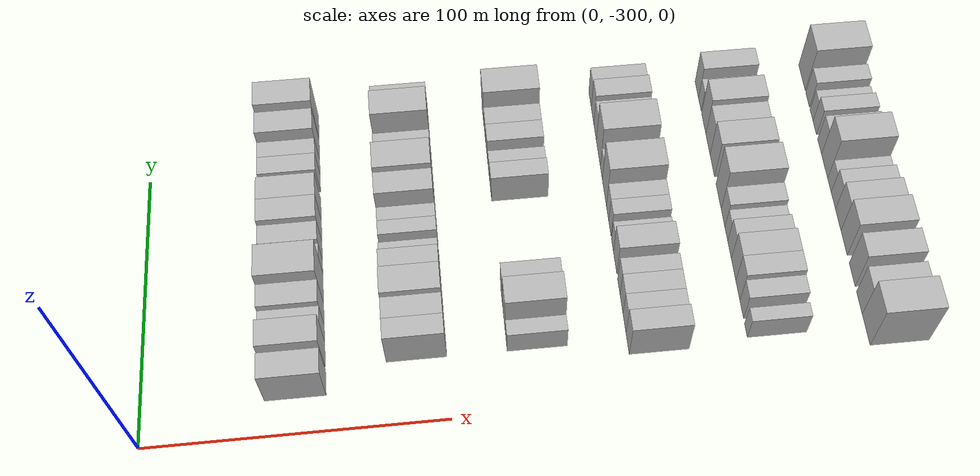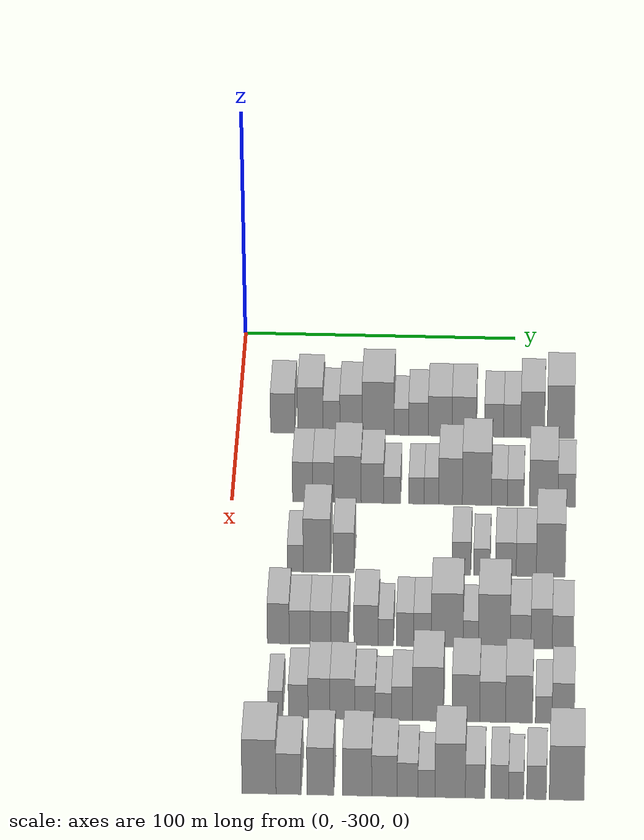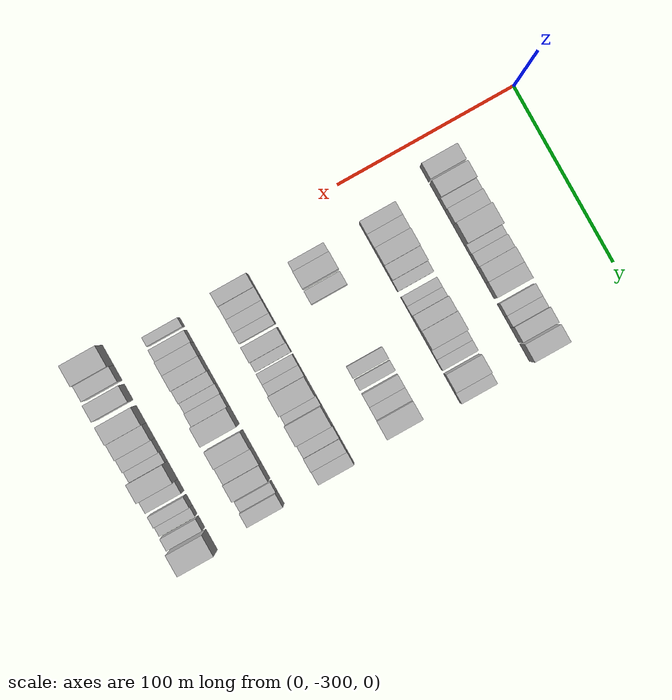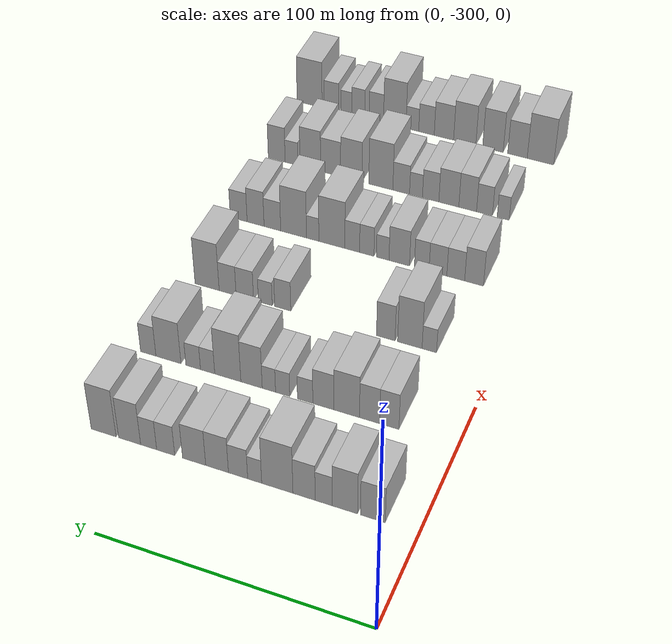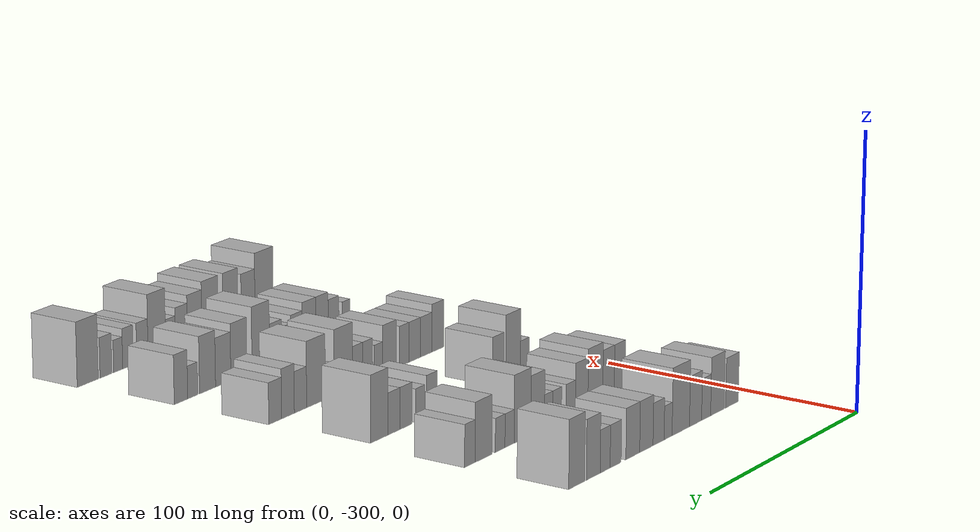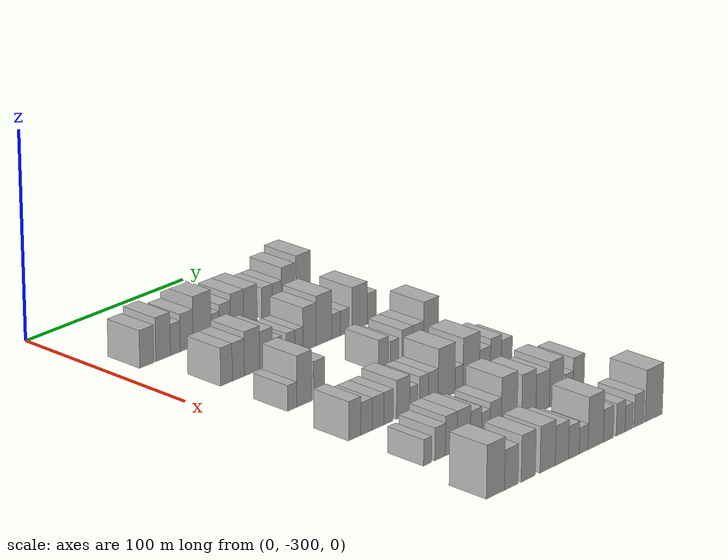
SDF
<sdf version="1.6">
 <world name="default">
  <model name="building_38">
   <static>1</static>
   <pose>50.0000 -283.4087 0 0.000000 0.000000 0.000000</pose>
   <link name="link">
    <pose>0 0 9.00 0 0 0</pose>
    <collision name="collision"><geometry><box><size>20.0000 8.8582 18.0000</size></box></geometry></collision>
    <visual name="visual">
     <cast_shadows>0</cast_shadows>
     <geometry><box><size>20.0000 8.8582 18.0000</size></box></geometry>
     <material>
      <script>
       <uri>model://HANNAS_wall/materials/scripts</uri>
       <uri>model://HANNAS_wall/materials/textures</uri>
       <name>vrc/HANNAS_wall</name>
      </script>
     </material>
    </visual>
   </link>
  </model>
  <model name="building_39">
   <static>1</static>
   <pose>50.0000 -273.3589 0 0.000000 0.000000 0.000000</pose>
   <link name="link">
    <pose>0 0 10.50 0 0 0</pose>
    <collision name="collision"><geometry><box><size>20.0000 9.2415 21.0000</size></box></geometry></collision>
    <visual name="visual">
     <cast_shadows>0</cast_shadows>
     <geometry><box><size>20.0000 9.2415 21.0000</size></box></geometry>
     <material>
      <script>
       <uri>model://HANNAS_wall/materials/scripts</uri>
       <uri>model://HANNAS_wall/materials/textures</uri>
       <name>vrc/HANNAS_wall</name>
      </script>
     </material>
    </visual>
   </link>
  </model>
  <model name="building_40">
   <static>1</static>
   <pose>50.0000 -265.6720 0 0.000000 0.000000 0.000000</pose>
   <link name="link">
    <pose>0 0 7.50 0 0 0</pose>
    <collision name="collision"><geometry><box><size>20.0000 6.1321 15.0000</size></box></geometry></collision>
    <visual name="visual">
     <cast_shadows>0</cast_shadows>
     <geometry><box><size>20.0000 6.1321 15.0000</size></box></geometry>
     <material>
      <script>
       <uri>model://HANNAS_wall/materials/scripts</uri>
       <uri>model://HANNAS_wall/materials/textures</uri>
       <name>vrc/HANNAS_wall</name>
      </script>
     </material>
    </visual>
   </link>
  </model>
  <model name="building_41">
   <static>1</static>
   <pose>50.0000 -258.5333 0 0.000000 0.000000 0.000000</pose>
   <link name="link">
    <pose>0 0 9.00 0 0 0</pose>
    <collision name="collision"><geometry><box><size>20.0000 8.1453 18.0000</size></box></geometry></collision>
    <visual name="visual">
     <cast_shadows>0</cast_shadows>
     <geometry><box><size>20.0000 8.1453 18.0000</size></box></geometry>
     <material>
      <script>
       <uri>model://HANNAS_wall/materials/scripts</uri>
       <uri>model://HANNAS_wall/materials/textures</uri>
       <name>vrc/HANNAS_wall</name>
      </script>
     </material>
    </visual>
   </link>
  </model>
  <model name="building_42">
   <static>1</static>
   <pose>50.0000 -248.6864 0 0.000000 0.000000 0.000000</pose>
   <link name="link">
    <pose>0 0 12.00 0 0 0</pose>
    <collision name="collision"><geometry><box><size>20.0000 11.5486 24.0000</size></box></geometry></collision>
    <visual name="visual">
     <cast_shadows>0</cast_shadows>
     <geometry><box><size>20.0000 11.5486 24.0000</size></box></geometry>
     <material>
      <script>
       <uri>model://HANNAS_wall/materials/scripts</uri>
       <uri>model://HANNAS_wall/materials/textures</uri>
       <name>vrc/HANNAS_wall</name>
      </script>
     </material>
    </visual>
   </link>
  </model>
  <model name="building_43">
   <static>1</static>
   <pose>50.0000 -240.2918 0 0.000000 0.000000 0.000000</pose>
   <link name="link">
    <pose>0 0 6.00 0 0 0</pose>
    <collision name="collision"><geometry><box><size>20.0000 5.2406 12.0000</size></box></geometry></collision>
    <visual name="visual">
     <cast_shadows>0</cast_shadows>
     <geometry><box><size>20.0000 5.2406 12.0000</size></box></geometry>
     <material>
      <script>
       <uri>model://HANNAS_wall/materials/scripts</uri>
       <uri>model://HANNAS_wall/materials/textures</uri>
       <name>vrc/HANNAS_wall</name>
      </script>
     </material>
    </visual>
   </link>
  </model>
  <model name="building_44">
   <static>1</static>
   <pose>50.0000 -234.0662 0 0.000000 0.000000 0.000000</pose>
   <link name="link">
    <pose>0 0 7.50 0 0 0</pose>
    <collision name="collision"><geometry><box><size>20.0000 7.2105 15.0000</size></box></geometry></collision>
    <visual name="visual">
     <cast_shadows>0</cast_shadows>
     <geometry><box><size>20.0000 7.2105 15.0000</size></box></geometry>
     <material>
      <script>
       <uri>model://HANNAS_wall/materials/scripts</uri>
       <uri>model://HANNAS_wall/materials/textures</uri>
       <name>vrc/HANNAS_wall</name>
      </script>
     </material>
    </visual>
   </link>
  </model>
  <model name="building_45">
   <static>1</static>
   <pose>50.0000 -226.1549 0 0.000000 0.000000 0.000000</pose>
   <link name="link">
    <pose>0 0 9.00 0 0 0</pose>
    <collision name="collision"><geometry><box><size>20.0000 8.6121 18.0000</size></box></geometry></collision>
    <visual name="visual">
     <cast_shadows>0</cast_shadows>
     <geometry><box><size>20.0000 8.6121 18.0000</size></box></geometry>
     <material>
      <script>
       <uri>model://HANNAS_wall/materials/scripts</uri>
       <uri>model://HANNAS_wall/materials/textures</uri>
       <name>vrc/HANNAS_wall</name>
      </script>
     </material>
    </visual>
   </link>
  </model>
  <model name="building_46">
   <static>1</static>
   <pose>50.0000 -217.4307 0 0.000000 0.000000 0.000000</pose>
   <link name="link">
    <pose>0 0 9.00 0 0 0</pose>
    <collision name="collision"><geometry><box><size>20.0000 8.8363 18.0000</size></box></geometry></collision>
    <visual name="visual">
     <cast_shadows>0</cast_shadows>
     <geometry><box><size>20.0000 8.8363 18.0000</size></box></geometry>
     <material>
      <script>
       <uri>model://HANNAS_wall/materials/scripts</uri>
       <uri>model://HANNAS_wall/materials/textures</uri>
       <name>vrc/HANNAS_wall</name>
      </script>
     </material>
    </visual>
   </link>
  </model>
  <model name="building_47">
   <static>1</static>
   <pose>50.0000 -206.5322 0 0.000000 0.000000 0.000000</pose>
   <link name="link">
    <pose>0 0 7.50 0 0 0</pose>
    <collision name="collision"><geometry><box><size>20.0000 6.9607 15.0000</size></box></geometry></collision>
    <visual name="visual">
     <cast_shadows>0</cast_shadows>
     <geometry><box><size>20.0000 6.9607 15.0000</size></box></geometry>
     <material>
      <script>
       <uri>model://HANNAS_wall/materials/scripts</uri>
       <uri>model://HANNAS_wall/materials/textures</uri>
       <name>vrc/HANNAS_wall</name>
      </script>
     </material>
    </visual>
   </link>
  </model>
  <model name="building_48">
   <static>1</static>
   <pose>50.0000 -199.9410 0 0.000000 0.000000 0.000000</pose>
   <link name="link">
    <pose>0 0 7.50 0 0 0</pose>
    <collision name="collision"><geometry><box><size>20.0000 6.2218 15.0000</size></box></geometry></collision>
    <visual name="visual">
     <cast_shadows>0</cast_shadows>
     <geometry><box><size>20.0000 6.2218 15.0000</size></box></geometry>
     <material>
      <script>
       <uri>model://HANNAS_wall/materials/scripts</uri>
       <uri>model://HANNAS_wall/materials/textures</uri>
       <name>vrc/HANNAS_wall</name>
      </script>
     </material>
    </visual>
   </link>
  </model>
  <model name="building_49">
   <static>1</static>
   <pose>50.0000 -192.5320 0 0.000000 0.000000 0.000000</pose>
   <link name="link">
    <pose>0 0 10.50 0 0 0</pose>
    <collision name="collision"><geometry><box><size>20.0000 8.5962 21.0000</size></box></geometry></collision>
    <visual name="visual">
     <cast_shadows>0</cast_shadows>
     <geometry><box><size>20.0000 8.5962 21.0000</size></box></geometry>
     <material>
      <script>
       <uri>model://HANNAS_wall/materials/scripts</uri>
       <uri>model://HANNAS_wall/materials/textures</uri>
       <name>vrc/HANNAS_wall</name>
      </script>
     </material>
    </visual>
   </link>
  </model>
  <model name="building_50">
   <static>1</static>
   <pose>50.0000 -182.3297 0 0.000000 0.000000 0.000000</pose>
   <link name="link">
    <pose>0 0 12.00 0 0 0</pose>
    <collision name="collision"><geometry><box><size>20.0000 9.8085 24.0000</size></box></geometry></collision>
    <visual name="visual">
     <cast_shadows>0</cast_shadows>
     <geometry><box><size>20.0000 9.8085 24.0000</size></box></geometry>
     <material>
      <script>
       <uri>model://HANNAS_wall/materials/scripts</uri>
       <uri>model://HANNAS_wall/materials/textures</uri>
       <name>vrc/HANNAS_wall</name>
      </script>
     </material>
    </visual>
   </link>
  </model>
  <model name="building_172">
   <static>1</static>
   <pose>90.0000 -274.3900 0 0.000000 0.000000 0.000000</pose>
   <link name="link">
    <pose>0 0 9.00 0 0 0</pose>
    <collision name="collision"><geometry><box><size>20.0000 7.2951 18.0000</size></box></geometry></collision>
    <visual name="visual">
     <cast_shadows>0</cast_shadows>
     <geometry><box><size>20.0000 7.2951 18.0000</size></box></geometry>
     <material>
      <script>
       <uri>model://HANNAS_wall/materials/scripts</uri>
       <uri>model://HANNAS_wall/materials/textures</uri>
       <name>vrc/HANNAS_wall</name>
      </script>
     </material>
    </visual>
   </link>
  </model>
  <model name="building_173">
   <static>1</static>
   <pose>90.0000 -266.9403 0 0.000000 0.000000 0.000000</pose>
   <link name="link">
    <pose>0 0 9.00 0 0 0</pose>
    <collision name="collision"><geometry><box><size>20.0000 7.6043 18.0000</size></box></geometry></collision>
    <visual name="visual">
     <cast_shadows>0</cast_shadows>
     <geometry><box><size>20.0000 7.6043 18.0000</size></box></geometry>
     <material>
      <script>
       <uri>model://HANNAS_wall/materials/scripts</uri>
       <uri>model://HANNAS_wall/materials/textures</uri>
       <name>vrc/HANNAS_wall</name>
      </script>
     </material>
    </visual>
   </link>
  </model>
  <model name="building_174">
   <static>1</static>
   <pose>90.0000 -258.2692 0 0.000000 0.000000 0.000000</pose>
   <link name="link">
    <pose>0 0 10.50 0 0 0</pose>
    <collision name="collision"><geometry><box><size>20.0000 9.7379 21.0000</size></box></geometry></collision>
    <visual name="visual">
     <cast_shadows>0</cast_shadows>
     <geometry><box><size>20.0000 9.7379 21.0000</size></box></geometry>
     <material>
      <script>
       <uri>model://HANNAS_wall/materials/scripts</uri>
       <uri>model://HANNAS_wall/materials/textures</uri>
       <name>vrc/HANNAS_wall</name>
      </script>
     </material>
    </visual>
   </link>
  </model>
  <model name="building_175">
   <static>1</static>
   <pose>90.0000 -249.3338 0 0.000000 0.000000 0.000000</pose>
   <link name="link">
    <pose>0 0 9.00 0 0 0</pose>
    <collision name="collision"><geometry><box><size>20.0000 8.1328 18.0000</size></box></geometry></collision>
    <visual name="visual">
     <cast_shadows>0</cast_shadows>
     <geometry><box><size>20.0000 8.1328 18.0000</size></box></geometry>
     <material>
      <script>
       <uri>model://HANNAS_wall/materials/scripts</uri>
       <uri>model://HANNAS_wall/materials/textures</uri>
       <name>vrc/HANNAS_wall</name>
      </script>
     </material>
    </visual>
   </link>
  </model>
  <model name="building_176">
   <static>1</static>
   <pose>90.0000 -242.2865 0 0.000000 0.000000 0.000000</pose>
   <link name="link">
    <pose>0 0 6.00 0 0 0</pose>
    <collision name="collision"><geometry><box><size>20.0000 5.9619 12.0000</size></box></geometry></collision>
    <visual name="visual">
     <cast_shadows>0</cast_shadows>
     <geometry><box><size>20.0000 5.9619 12.0000</size></box></geometry>
     <material>
      <script>
       <uri>model://HANNAS_wall/materials/scripts</uri>
       <uri>model://HANNAS_wall/materials/textures</uri>
       <name>vrc/HANNAS_wall</name>
      </script>
     </material>
    </visual>
   </link>
  </model>
  <model name="building_177">
   <static>1</static>
   <pose>90.0000 -233.5311 0 0.000000 0.000000 0.000000</pose>
   <link name="link">
    <pose>0 0 6.00 0 0 0</pose>
    <collision name="collision"><geometry><box><size>20.0000 5.5489 12.0000</size></box></geometry></collision>
    <visual name="visual">
     <cast_shadows>0</cast_shadows>
     <geometry><box><size>20.0000 5.5489 12.0000</size></box></geometry>
     <material>
      <script>
       <uri>model://HANNAS_wall/materials/scripts</uri>
       <uri>model://HANNAS_wall/materials/textures</uri>
       <name>vrc/HANNAS_wall</name>
      </script>
     </material>
    </visual>
   </link>
  </model>
  <model name="building_178">
   <static>1</static>
   <pose>90.0000 -228.1463 0 0.000000 0.000000 0.000000</pose>
   <link name="link">
    <pose>0 0 6.00 0 0 0</pose>
    <collision name="collision"><geometry><box><size>20.0000 5.2207 12.0000</size></box></geometry></collision>
    <visual name="visual">
     <cast_shadows>0</cast_shadows>
     <geometry><box><size>20.0000 5.2207 12.0000</size></box></geometry>
     <material>
      <script>
       <uri>model://HANNAS_wall/materials/scripts</uri>
       <uri>model://HANNAS_wall/materials/textures</uri>
       <name>vrc/HANNAS_wall</name>
      </script>
     </material>
    </visual>
   </link>
  </model>
  <model name="building_179">
   <static>1</static>
   <pose>90.0000 -221.3165 0 0.000000 0.000000 0.000000</pose>
   <link name="link">
    <pose>0 0 10.50 0 0 0</pose>
    <collision name="collision"><geometry><box><size>20.0000 8.4388 21.0000</size></box></geometry></collision>
    <visual name="visual">
     <cast_shadows>0</cast_shadows>
     <geometry><box><size>20.0000 8.4388 21.0000</size></box></geometry>
     <material>
      <script>
       <uri>model://HANNAS_wall/materials/scripts</uri>
       <uri>model://HANNAS_wall/materials/textures</uri>
       <name>vrc/HANNAS_wall</name>
      </script>
     </material>
    </visual>
   </link>
  </model>
  <model name="building_180">
   <static>1</static>
   <pose>90.0000 -211.8844 0 0.000000 0.000000 0.000000</pose>
   <link name="link">
    <pose>0 0 12.00 0 0 0</pose>
    <collision name="collision"><geometry><box><size>20.0000 10.4253 24.0000</size></box></geometry></collision>
    <visual name="visual">
     <cast_shadows>0</cast_shadows>
     <geometry><box><size>20.0000 10.4253 24.0000</size></box></geometry>
     <material>
      <script>
       <uri>model://HANNAS_wall/materials/scripts</uri>
       <uri>model://HANNAS_wall/materials/textures</uri>
       <name>vrc/HANNAS_wall</name>
      </script>
     </material>
    </visual>
   </link>
  </model>
  <model name="building_181">
   <static>1</static>
   <pose>90.0000 -203.8124 0 0.000000 0.000000 0.000000</pose>
   <link name="link">
    <pose>0 0 6.00 0 0 0</pose>
    <collision name="collision"><geometry><box><size>20.0000 5.7188 12.0000</size></box></geometry></collision>
    <visual name="visual">
     <cast_shadows>0</cast_shadows>
     <geometry><box><size>20.0000 5.7188 12.0000</size></box></geometry>
     <material>
      <script>
       <uri>model://HANNAS_wall/materials/scripts</uri>
       <uri>model://HANNAS_wall/materials/textures</uri>
       <name>vrc/HANNAS_wall</name>
      </script>
     </material>
    </visual>
   </link>
  </model>
  <model name="building_182">
   <static>1</static>
   <pose>90.0000 -198.0016 0 0.000000 0.000000 0.000000</pose>
   <link name="link">
    <pose>0 0 6.00 0 0 0</pose>
    <collision name="collision"><geometry><box><size>20.0000 5.9027 12.0000</size></box></geometry></collision>
    <visual name="visual">
     <cast_shadows>0</cast_shadows>
     <geometry><box><size>20.0000 5.9027 12.0000</size></box></geometry>
     <material>
      <script>
       <uri>model://HANNAS_wall/materials/scripts</uri>
       <uri>model://HANNAS_wall/materials/textures</uri>
       <name>vrc/HANNAS_wall</name>
      </script>
     </material>
    </visual>
   </link>
  </model>
  <model name="building_183">
   <static>1</static>
   <pose>90.0000 -187.9559 0 0.000000 0.000000 0.000000</pose>
   <link name="link">
    <pose>0 0 10.50 0 0 0</pose>
    <collision name="collision"><geometry><box><size>20.0000 10.1887 21.0000</size></box></geometry></collision>
    <visual name="visual">
     <cast_shadows>0</cast_shadows>
     <geometry><box><size>20.0000 10.1887 21.0000</size></box></geometry>
     <material>
      <script>
       <uri>model://HANNAS_wall/materials/scripts</uri>
       <uri>model://HANNAS_wall/materials/textures</uri>
       <name>vrc/HANNAS_wall</name>
      </script>
     </material>
    </visual>
   </link>
  </model>
  <model name="building_184">
   <static>1</static>
   <pose>90.0000 -179.7207 0 0.000000 0.000000 0.000000</pose>
   <link name="link">
    <pose>0 0 7.50 0 0 0</pose>
    <collision name="collision"><geometry><box><size>20.0000 6.2817 15.0000</size></box></geometry></collision>
    <visual name="visual">
     <cast_shadows>0</cast_shadows>
     <geometry><box><size>20.0000 6.2817 15.0000</size></box></geometry>
     <material>
      <script>
       <uri>model://HANNAS_wall/materials/scripts</uri>
       <uri>model://HANNAS_wall/materials/textures</uri>
       <name>vrc/HANNAS_wall</name>
      </script>
     </material>
    </visual>
   </link>
  </model>
  <model name="building_301">
   <static>1</static>
   <pose>130.0000 -275.2551 0 0.000000 0.000000 0.000000</pose>
   <link name="link">
    <pose>0 0 6.00 0 0 0</pose>
    <collision name="collision"><geometry><box><size>20.0000 5.6584 12.0000</size></box></geometry></collision>
    <visual name="visual">
     <cast_shadows>0</cast_shadows>
     <geometry><box><size>20.0000 5.6584 12.0000</size></box></geometry>
     <material>
      <script>
       <uri>model://HANNAS_wall/materials/scripts</uri>
       <uri>model://HANNAS_wall/materials/textures</uri>
       <name>vrc/HANNAS_wall</name>
      </script>
     </material>
    </visual>
   </link>
  </model>
  <model name="building_302">
   <static>1</static>
   <pose>130.0000 -267.6108 0 0.000000 0.000000 0.000000</pose>
   <link name="link">
    <pose>0 0 12.00 0 0 0</pose>
    <collision name="collision"><geometry><box><size>20.0000 9.6302 24.0000</size></box></geometry></collision>
    <visual name="visual">
     <cast_shadows>0</cast_shadows>
     <geometry><box><size>20.0000 9.6302 24.0000</size></box></geometry>
     <material>
      <script>
       <uri>model://HANNAS_wall/materials/scripts</uri>
       <uri>model://HANNAS_wall/materials/textures</uri>
       <name>vrc/HANNAS_wall</name>
      </script>
     </material>
    </visual>
   </link>
  </model>
  <model name="building_303">
   <static>1</static>
   <pose>130.0000 -258.1049 0 0.000000 0.000000 0.000000</pose>
   <link name="link">
    <pose>0 0 9.00 0 0 0</pose>
    <collision name="collision"><geometry><box><size>20.0000 7.3816 18.0000</size></box></geometry></collision>
    <visual name="visual">
     <cast_shadows>0</cast_shadows>
     <geometry><box><size>20.0000 7.3816 18.0000</size></box></geometry>
     <material>
      <script>
       <uri>model://HANNAS_wall/materials/scripts</uri>
       <uri>model://HANNAS_wall/materials/textures</uri>
       <name>vrc/HANNAS_wall</name>
      </script>
     </material>
    </visual>
   </link>
  </model>
  <model name="building_304">
   <static>1</static>
   <pose>130.0000 -216.4447 0 0.000000 0.000000 0.000000</pose>
   <link name="link">
    <pose>0 0 7.50 0 0 0</pose>
    <collision name="collision"><geometry><box><size>20.0000 6.6463 15.0000</size></box></geometry></collision>
    <visual name="visual">
     <cast_shadows>0</cast_shadows>
     <geometry><box><size>20.0000 6.6463 15.0000</size></box></geometry>
     <material>
      <script>
       <uri>model://HANNAS_wall/materials/scripts</uri>
       <uri>model://HANNAS_wall/materials/textures</uri>
       <name>vrc/HANNAS_wall</name>
      </script>
     </material>
    </visual>
   </link>
  </model>
  <model name="building_305">
   <static>1</static>
   <pose>130.0000 -209.2404 0 0.000000 0.000000 0.000000</pose>
   <link name="link">
    <pose>0 0 6.00 0 0 0</pose>
    <collision name="collision"><geometry><box><size>20.0000 5.7623 12.0000</size></box></geometry></collision>
    <visual name="visual">
     <cast_shadows>0</cast_shadows>
     <geometry><box><size>20.0000 5.7623 12.0000</size></box></geometry>
     <material>
      <script>
       <uri>model://HANNAS_wall/materials/scripts</uri>
       <uri>model://HANNAS_wall/materials/textures</uri>
       <name>vrc/HANNAS_wall</name>
      </script>
     </material>
    </visual>
   </link>
  </model>
  <model name="building_306">
   <static>1</static>
   <pose>130.0000 -200.7106 0 0.000000 0.000000 0.000000</pose>
   <link name="link">
    <pose>0 0 7.50 0 0 0</pose>
    <collision name="collision"><geometry><box><size>20.0000 7.2974 15.0000</size></box></geometry></collision>
    <visual name="visual">
     <cast_shadows>0</cast_shadows>
     <geometry><box><size>20.0000 7.2974 15.0000</size></box></geometry>
     <material>
      <script>
       <uri>model://HANNAS_wall/materials/scripts</uri>
       <uri>model://HANNAS_wall/materials/textures</uri>
       <name>vrc/HANNAS_wall</name>
      </script>
     </material>
    </visual>
   </link>
  </model>
  <model name="building_307">
   <static>1</static>
   <pose>130.0000 -193.4997 0 0.000000 0.000000 0.000000</pose>
   <link name="link">
    <pose>0 0 7.50 0 0 0</pose>
    <collision name="collision"><geometry><box><size>20.0000 7.1245 15.0000</size></box></geometry></collision>
    <visual name="visual">
     <cast_shadows>0</cast_shadows>
     <geometry><box><size>20.0000 7.1245 15.0000</size></box></geometry>
     <material>
      <script>
       <uri>model://HANNAS_wall/materials/scripts</uri>
       <uri>model://HANNAS_wall/materials/textures</uri>
       <name>vrc/HANNAS_wall</name>
      </script>
     </material>
    </visual>
   </link>
  </model>
  <model name="building_308">
   <static>1</static>
   <pose>130.0000 -184.8288 0 0.000000 0.000000 0.000000</pose>
   <link name="link">
    <pose>0 0 12.00 0 0 0</pose>
    <collision name="collision"><geometry><box><size>20.0000 10.2173 24.0000</size></box></geometry></collision>
    <visual name="visual">
     <cast_shadows>0</cast_shadows>
     <geometry><box><size>20.0000 10.2173 24.0000</size></box></geometry>
     <material>
      <script>
       <uri>model://HANNAS_wall/materials/scripts</uri>
       <uri>model://HANNAS_wall/materials/textures</uri>
       <name>vrc/HANNAS_wall</name>
      </script>
     </material>
    </visual>
   </link>
  </model>
  <model name="building_441">
   <static>1</static>
   <pose>170.0000 -279.4368 0 0.000000 0.000000 0.000000</pose>
   <link name="link">
    <pose>0 0 9.00 0 0 0</pose>
    <collision name="collision"><geometry><box><size>20.0000 7.6248 18.0000</size></box></geometry></collision>
    <visual name="visual">
     <cast_shadows>0</cast_shadows>
     <geometry><box><size>20.0000 7.6248 18.0000</size></box></geometry>
     <material>
      <script>
       <uri>model://HANNAS_wall/materials/scripts</uri>
       <uri>model://HANNAS_wall/materials/textures</uri>
       <name>vrc/HANNAS_wall</name>
      </script>
     </material>
    </visual>
   </link>
  </model>
  <model name="building_442">
   <static>1</static>
   <pose>170.0000 -271.9789 0 0.000000 0.000000 0.000000</pose>
   <link name="link">
    <pose>0 0 7.50 0 0 0</pose>
    <collision name="collision"><geometry><box><size>20.0000 7.2910 15.0000</size></box></geometry></collision>
    <visual name="visual">
     <cast_shadows>0</cast_shadows>
     <geometry><box><size>20.0000 7.2910 15.0000</size></box></geometry>
     <material>
      <script>
       <uri>model://HANNAS_wall/materials/scripts</uri>
       <uri>model://HANNAS_wall/materials/textures</uri>
       <name>vrc/HANNAS_wall</name>
      </script>
     </material>
    </visual>
   </link>
  </model>
  <model name="building_443">
   <static>1</static>
   <pose>170.0000 -264.6996 0 0.000000 0.000000 0.000000</pose>
   <link name="link">
    <pose>0 0 7.50 0 0 0</pose>
    <collision name="collision"><geometry><box><size>20.0000 7.2676 15.0000</size></box></geometry></collision>
    <visual name="visual">
     <cast_shadows>0</cast_shadows>
     <geometry><box><size>20.0000 7.2676 15.0000</size></box></geometry>
     <material>
      <script>
       <uri>model://HANNAS_wall/materials/scripts</uri>
       <uri>model://HANNAS_wall/materials/textures</uri>
       <name>vrc/HANNAS_wall</name>
      </script>
     </material>
    </visual>
   </link>
  </model>
  <model name="building_444">
   <static>1</static>
   <pose>170.0000 -258.0410 0 0.000000 0.000000 0.000000</pose>
   <link name="link">
    <pose>0 0 7.50 0 0 0</pose>
    <collision name="collision"><geometry><box><size>20.0000 6.0497 15.0000</size></box></geometry></collision>
    <visual name="visual">
     <cast_shadows>0</cast_shadows>
     <geometry><box><size>20.0000 6.0497 15.0000</size></box></geometry>
     <material>
      <script>
       <uri>model://HANNAS_wall/materials/scripts</uri>
       <uri>model://HANNAS_wall/materials/textures</uri>
       <name>vrc/HANNAS_wall</name>
      </script>
     </material>
    </visual>
   </link>
  </model>
  <model name="building_445">
   <static>1</static>
   <pose>170.0000 -248.7470 0 0.000000 0.000000 0.000000</pose>
   <link name="link">
    <pose>0 0 9.00 0 0 0</pose>
    <collision name="collision"><geometry><box><size>20.0000 8.5382 18.0000</size></box></geometry></collision>
    <visual name="visual">
     <cast_shadows>0</cast_shadows>
     <geometry><box><size>20.0000 8.5382 18.0000</size></box></geometry>
     <material>
      <script>
       <uri>model://HANNAS_wall/materials/scripts</uri>
       <uri>model://HANNAS_wall/materials/textures</uri>
       <name>vrc/HANNAS_wall</name>
      </script>
     </material>
    </visual>
   </link>
  </model>
  <model name="building_446">
   <static>1</static>
   <pose>170.0000 -241.8376 0 0.000000 0.000000 0.000000</pose>
   <link name="link">
    <pose>0 0 6.00 0 0 0</pose>
    <collision name="collision"><geometry><box><size>20.0000 5.2805 12.0000</size></box></geometry></collision>
    <visual name="visual">
     <cast_shadows>0</cast_shadows>
     <geometry><box><size>20.0000 5.2805 12.0000</size></box></geometry>
     <material>
      <script>
       <uri>model://HANNAS_wall/materials/scripts</uri>
       <uri>model://HANNAS_wall/materials/textures</uri>
       <name>vrc/HANNAS_wall</name>
      </script>
     </material>
    </visual>
   </link>
  </model>
  <model name="building_447">
   <static>1</static>
   <pose>170.0000 -235.1745 0 0.000000 0.000000 0.000000</pose>
   <link name="link">
    <pose>0 0 7.50 0 0 0</pose>
    <collision name="collision"><geometry><box><size>20.0000 6.0457 15.0000</size></box></geometry></collision>
    <visual name="visual">
     <cast_shadows>0</cast_shadows>
     <geometry><box><size>20.0000 6.0457 15.0000</size></box></geometry>
     <material>
      <script>
       <uri>model://HANNAS_wall/materials/scripts</uri>
       <uri>model://HANNAS_wall/materials/textures</uri>
       <name>vrc/HANNAS_wall</name>
      </script>
     </material>
    </visual>
   </link>
  </model>
  <model name="building_448">
   <static>1</static>
   <pose>170.0000 -229.0425 0 0.000000 0.000000 0.000000</pose>
   <link name="link">
    <pose>0 0 7.50 0 0 0</pose>
    <collision name="collision"><geometry><box><size>20.0000 6.2183 15.0000</size></box></geometry></collision>
    <visual name="visual">
     <cast_shadows>0</cast_shadows>
     <geometry><box><size>20.0000 6.2183 15.0000</size></box></geometry>
     <material>
      <script>
       <uri>model://HANNAS_wall/materials/scripts</uri>
       <uri>model://HANNAS_wall/materials/textures</uri>
       <name>vrc/HANNAS_wall</name>
      </script>
     </material>
    </visual>
   </link>
  </model>
  <model name="building_449">
   <static>1</static>
   <pose>170.0000 -220.3981 0 0.000000 0.000000 0.000000</pose>
   <link name="link">
    <pose>0 0 12.00 0 0 0</pose>
    <collision name="collision"><geometry><box><size>20.0000 11.0705 24.0000</size></box></geometry></collision>
    <visual name="visual">
     <cast_shadows>0</cast_shadows>
     <geometry><box><size>20.0000 11.0705 24.0000</size></box></geometry>
     <material>
      <script>
       <uri>model://HANNAS_wall/materials/scripts</uri>
       <uri>model://HANNAS_wall/materials/textures</uri>
       <name>vrc/HANNAS_wall</name>
      </script>
     </material>
    </visual>
   </link>
  </model>
  <model name="building_450">
   <static>1</static>
   <pose>170.0000 -212.2107 0 0.000000 0.000000 0.000000</pose>
   <link name="link">
    <pose>0 0 6.00 0 0 0</pose>
    <collision name="collision"><geometry><box><size>20.0000 5.3043 12.0000</size></box></geometry></collision>
    <visual name="visual">
     <cast_shadows>0</cast_shadows>
     <geometry><box><size>20.0000 5.3043 12.0000</size></box></geometry>
     <material>
      <script>
       <uri>model://HANNAS_wall/materials/scripts</uri>
       <uri>model://HANNAS_wall/materials/textures</uri>
       <name>vrc/HANNAS_wall</name>
      </script>
     </material>
    </visual>
   </link>
  </model>
  <model name="building_451">
   <static>1</static>
   <pose>170.0000 -203.9943 0 0.000000 0.000000 0.000000</pose>
   <link name="link">
    <pose>0 0 12.00 0 0 0</pose>
    <collision name="collision"><geometry><box><size>20.0000 11.1286 24.0000</size></box></geometry></collision>
    <visual name="visual">
     <cast_shadows>0</cast_shadows>
     <geometry><box><size>20.0000 11.1286 24.0000</size></box></geometry>
     <material>
      <script>
       <uri>model://HANNAS_wall/materials/scripts</uri>
       <uri>model://HANNAS_wall/materials/textures</uri>
       <name>vrc/HANNAS_wall</name>
      </script>
     </material>
    </visual>
   </link>
  </model>
  <model name="building_452">
   <static>1</static>
   <pose>170.0000 -194.8147 0 0.000000 0.000000 0.000000</pose>
   <link name="link">
    <pose>0 0 7.50 0 0 0</pose>
    <collision name="collision"><geometry><box><size>20.0000 7.2306 15.0000</size></box></geometry></collision>
    <visual name="visual">
     <cast_shadows>0</cast_shadows>
     <geometry><box><size>20.0000 7.2306 15.0000</size></box></geometry>
     <material>
      <script>
       <uri>model://HANNAS_wall/materials/scripts</uri>
       <uri>model://HANNAS_wall/materials/textures</uri>
       <name>vrc/HANNAS_wall</name>
      </script>
     </material>
    </visual>
   </link>
  </model>
  <model name="building_453">
   <static>1</static>
   <pose>170.0000 -187.4894 0 0.000000 0.000000 0.000000</pose>
   <link name="link">
    <pose>0 0 9.00 0 0 0</pose>
    <collision name="collision"><geometry><box><size>20.0000 7.4199 18.0000</size></box></geometry></collision>
    <visual name="visual">
     <cast_shadows>0</cast_shadows>
     <geometry><box><size>20.0000 7.4199 18.0000</size></box></geometry>
     <material>
      <script>
       <uri>model://HANNAS_wall/materials/scripts</uri>
       <uri>model://HANNAS_wall/materials/textures</uri>
       <name>vrc/HANNAS_wall</name>
      </script>
     </material>
    </visual>
   </link>
  </model>
  <model name="building_454">
   <static>1</static>
   <pose>170.0000 -180.0753 0 0.000000 0.000000 0.000000</pose>
   <link name="link">
    <pose>0 0 7.50 0 0 0</pose>
    <collision name="collision"><geometry><box><size>20.0000 7.4084 15.0000</size></box></geometry></collision>
    <visual name="visual">
     <cast_shadows>0</cast_shadows>
     <geometry><box><size>20.0000 7.4084 15.0000</size></box></geometry>
     <material>
      <script>
       <uri>model://HANNAS_wall/materials/scripts</uri>
       <uri>model://HANNAS_wall/materials/textures</uri>
       <name>vrc/HANNAS_wall</name>
      </script>
     </material>
    </visual>
   </link>
  </model>
  <model name="building_584">
   <static>1</static>
   <pose>210.0000 -278.5540 0 0.000000 0.000000 0.000000</pose>
   <link name="link">
    <pose>0 0 6.00 0 0 0</pose>
    <collision name="collision"><geometry><box><size>20.0000 5.0502 12.0000</size></box></geometry></collision>
    <visual name="visual">
     <cast_shadows>0</cast_shadows>
     <geometry><box><size>20.0000 5.0502 12.0000</size></box></geometry>
     <material>
      <script>
       <uri>model://HANNAS_wall/materials/scripts</uri>
       <uri>model://HANNAS_wall/materials/textures</uri>
       <name>vrc/HANNAS_wall</name>
      </script>
     </material>
    </visual>
   </link>
  </model>
  <model name="building_585">
   <static>1</static>
   <pose>210.0000 -270.6662 0 0.000000 0.000000 0.000000</pose>
   <link name="link">
    <pose>0 0 7.50 0 0 0</pose>
    <collision name="collision"><geometry><box><size>20.0000 6.7253 15.0000</size></box></geometry></collision>
    <visual name="visual">
     <cast_shadows>0</cast_shadows>
     <geometry><box><size>20.0000 6.7253 15.0000</size></box></geometry>
     <material>
      <script>
       <uri>model://HANNAS_wall/materials/scripts</uri>
       <uri>model://HANNAS_wall/materials/textures</uri>
       <name>vrc/HANNAS_wall</name>
      </script>
     </material>
    </visual>
   </link>
  </model>
  <model name="building_586">
   <static>1</static>
   <pose>210.0000 -263.5323 0 0.000000 0.000000 0.000000</pose>
   <link name="link">
    <pose>0 0 9.00 0 0 0</pose>
    <collision name="collision"><geometry><box><size>20.0000 7.5426 18.0000</size></box></geometry></collision>
    <visual name="visual">
     <cast_shadows>0</cast_shadows>
     <geometry><box><size>20.0000 7.5426 18.0000</size></box></geometry>
     <material>
      <script>
       <uri>model://HANNAS_wall/materials/scripts</uri>
       <uri>model://HANNAS_wall/materials/textures</uri>
       <name>vrc/HANNAS_wall</name>
      </script>
     </material>
    </visual>
   </link>
  </model>
  <model name="building_587">
   <static>1</static>
   <pose>210.0000 -255.4830 0 0.000000 0.000000 0.000000</pose>
   <link name="link">
    <pose>0 0 9.00 0 0 0</pose>
    <collision name="collision"><geometry><box><size>20.0000 8.5559 18.0000</size></box></geometry></collision>
    <visual name="visual">
     <cast_shadows>0</cast_shadows>
     <geometry><box><size>20.0000 8.5559 18.0000</size></box></geometry>
     <material>
      <script>
       <uri>model://HANNAS_wall/materials/scripts</uri>
       <uri>model://HANNAS_wall/materials/textures</uri>
       <name>vrc/HANNAS_wall</name>
      </script>
     </material>
    </visual>
   </link>
  </model>
  <model name="building_588">
   <static>1</static>
   <pose>210.0000 -247.6713 0 0.000000 0.000000 0.000000</pose>
   <link name="link">
    <pose>0 0 7.50 0 0 0</pose>
    <collision name="collision"><geometry><box><size>20.0000 7.0676 15.0000</size></box></geometry></collision>
    <visual name="visual">
     <cast_shadows>0</cast_shadows>
     <geometry><box><size>20.0000 7.0676 15.0000</size></box></geometry>
     <material>
      <script>
       <uri>model://HANNAS_wall/materials/scripts</uri>
       <uri>model://HANNAS_wall/materials/textures</uri>
       <name>vrc/HANNAS_wall</name>
      </script>
     </material>
    </visual>
   </link>
  </model>
  <model name="building_589">
   <static>1</static>
   <pose>210.0000 -241.3394 0 0.000000 0.000000 0.000000</pose>
   <link name="link">
    <pose>0 0 6.00 0 0 0</pose>
    <collision name="collision"><geometry><box><size>20.0000 5.5961 12.0000</size></box></geometry></collision>
    <visual name="visual">
     <cast_shadows>0</cast_shadows>
     <geometry><box><size>20.0000 5.5961 12.0000</size></box></geometry>
     <material>
      <script>
       <uri>model://HANNAS_wall/materials/scripts</uri>
       <uri>model://HANNAS_wall/materials/textures</uri>
       <name>vrc/HANNAS_wall</name>
      </script>
     </material>
    </visual>
   </link>
  </model>
  <model name="building_590">
   <static>1</static>
   <pose>210.0000 -234.9019 0 0.000000 0.000000 0.000000</pose>
   <link name="link">
    <pose>0 0 7.50 0 0 0</pose>
    <collision name="collision"><geometry><box><size>20.0000 7.2789 15.0000</size></box></geometry></collision>
    <visual name="visual">
     <cast_shadows>0</cast_shadows>
     <geometry><box><size>20.0000 7.2789 15.0000</size></box></geometry>
     <material>
      <script>
       <uri>model://HANNAS_wall/materials/scripts</uri>
       <uri>model://HANNAS_wall/materials/textures</uri>
       <name>vrc/HANNAS_wall</name>
      </script>
     </material>
    </visual>
   </link>
  </model>
  <model name="building_591">
   <static>1</static>
   <pose>210.0000 -225.9851 0 0.000000 0.000000 0.000000</pose>
   <link name="link">
    <pose>0 0 12.00 0 0 0</pose>
    <collision name="collision"><geometry><box><size>20.0000 10.5547 24.0000</size></box></geometry></collision>
    <visual name="visual">
     <cast_shadows>0</cast_shadows>
     <geometry><box><size>20.0000 10.5547 24.0000</size></box></geometry>
     <material>
      <script>
       <uri>model://HANNAS_wall/materials/scripts</uri>
       <uri>model://HANNAS_wall/materials/textures</uri>
       <name>vrc/HANNAS_wall</name>
      </script>
     </material>
    </visual>
   </link>
  </model>
  <model name="building_592">
   <static>1</static>
   <pose>210.0000 -212.9522 0 0.000000 0.000000 0.000000</pose>
   <link name="link">
    <pose>0 0 10.50 0 0 0</pose>
    <collision name="collision"><geometry><box><size>20.0000 9.5110 21.0000</size></box></geometry></collision>
    <visual name="visual">
     <cast_shadows>0</cast_shadows>
     <geometry><box><size>20.0000 9.5110 21.0000</size></box></geometry>
     <material>
      <script>
       <uri>model://HANNAS_wall/materials/scripts</uri>
       <uri>model://HANNAS_wall/materials/textures</uri>
       <name>vrc/HANNAS_wall</name>
      </script>
     </material>
    </visual>
   </link>
  </model>
  <model name="building_593">
   <static>1</static>
   <pose>210.0000 -203.7384 0 0.000000 0.000000 0.000000</pose>
   <link name="link">
    <pose>0 0 9.00 0 0 0</pose>
    <collision name="collision"><geometry><box><size>20.0000 8.9165 18.0000</size></box></geometry></collision>
    <visual name="visual">
     <cast_shadows>0</cast_shadows>
     <geometry><box><size>20.0000 8.9165 18.0000</size></box></geometry>
     <material>
      <script>
       <uri>model://HANNAS_wall/materials/scripts</uri>
       <uri>model://HANNAS_wall/materials/textures</uri>
       <name>vrc/HANNAS_wall</name>
      </script>
     </material>
    </visual>
   </link>
  </model>
  <model name="building_594">
   <static>1</static>
   <pose>210.0000 -194.6480 0 0.000000 0.000000 0.000000</pose>
   <link name="link">
    <pose>0 0 10.50 0 0 0</pose>
    <collision name="collision"><geometry><box><size>20.0000 9.2644 21.0000</size></box></geometry></collision>
    <visual name="visual">
     <cast_shadows>0</cast_shadows>
     <geometry><box><size>20.0000 9.2644 21.0000</size></box></geometry>
     <material>
      <script>
       <uri>model://HANNAS_wall/materials/scripts</uri>
       <uri>model://HANNAS_wall/materials/textures</uri>
       <name>vrc/HANNAS_wall</name>
      </script>
     </material>
    </visual>
   </link>
  </model>
  <model name="building_595">
   <static>1</static>
   <pose>210.0000 -186.1416 0 0.000000 0.000000 0.000000</pose>
   <link name="link">
    <pose>0 0 6.00 0 0 0</pose>
    <collision name="collision"><geometry><box><size>20.0000 5.7483 12.0000</size></box></geometry></collision>
    <visual name="visual">
     <cast_shadows>0</cast_shadows>
     <geometry><box><size>20.0000 5.7483 12.0000</size></box></geometry>
     <material>
      <script>
       <uri>model://HANNAS_wall/materials/scripts</uri>
       <uri>model://HANNAS_wall/materials/textures</uri>
       <name>vrc/HANNAS_wall</name>
      </script>
     </material>
    </visual>
   </link>
  </model>
  <model name="building_596">
   <static>1</static>
   <pose>210.0000 -179.4447 0 0.000000 0.000000 0.000000</pose>
   <link name="link">
    <pose>0 0 9.00 0 0 0</pose>
    <collision name="collision"><geometry><box><size>20.0000 7.6455 18.0000</size></box></geometry></collision>
    <visual name="visual">
     <cast_shadows>0</cast_shadows>
     <geometry><box><size>20.0000 7.6455 18.0000</size></box></geometry>
     <material>
      <script>
       <uri>model://HANNAS_wall/materials/scripts</uri>
       <uri>model://HANNAS_wall/materials/textures</uri>
       <name>vrc/HANNAS_wall</name>
      </script>
     </material>
    </visual>
   </link>
  </model>
  <model name="building_712">
   <static>1</static>
   <pose>250.0000 -282.2449 0 0.000000 0.000000 0.000000</pose>
   <link name="link">
    <pose>0 0 12.00 0 0 0</pose>
    <collision name="collision"><geometry><box><size>20.0000 11.5274 24.0000</size></box></geometry></collision>
    <visual name="visual">
     <cast_shadows>0</cast_shadows>
     <geometry><box><size>20.0000 11.5274 24.0000</size></box></geometry>
     <material>
      <script>
       <uri>model://HANNAS_wall/materials/scripts</uri>
       <uri>model://HANNAS_wall/materials/textures</uri>
       <name>vrc/HANNAS_wall</name>
      </script>
     </material>
    </visual>
   </link>
  </model>
  <model name="building_713">
   <static>1</static>
   <pose>250.0000 -272.2111 0 0.000000 0.000000 0.000000</pose>
   <link name="link">
    <pose>0 0 9.00 0 0 0</pose>
    <collision name="collision"><geometry><box><size>20.0000 8.5400 18.0000</size></box></geometry></collision>
    <visual name="visual">
     <cast_shadows>0</cast_shadows>
     <geometry><box><size>20.0000 8.5400 18.0000</size></box></geometry>
     <material>
      <script>
       <uri>model://HANNAS_wall/materials/scripts</uri>
       <uri>model://HANNAS_wall/materials/textures</uri>
       <name>vrc/HANNAS_wall</name>
      </script>
     </material>
    </visual>
   </link>
  </model>
  <model name="building_714">
   <static>1</static>
   <pose>250.0000 -261.4034 0 0.000000 0.000000 0.000000</pose>
   <link name="link">
    <pose>0 0 10.50 0 0 0</pose>
    <collision name="collision"><geometry><box><size>20.0000 9.0755 21.0000</size></box></geometry></collision>
    <visual name="visual">
     <cast_shadows>0</cast_shadows>
     <geometry><box><size>20.0000 9.0755 21.0000</size></box></geometry>
     <material>
      <script>
       <uri>model://HANNAS_wall/materials/scripts</uri>
       <uri>model://HANNAS_wall/materials/textures</uri>
       <name>vrc/HANNAS_wall</name>
      </script>
     </material>
    </visual>
   </link>
  </model>
  <model name="building_715">
   <static>1</static>
   <pose>250.0000 -248.9035 0 0.000000 0.000000 0.000000</pose>
   <link name="link">
    <pose>0 0 10.50 0 0 0</pose>
    <collision name="collision"><geometry><box><size>20.0000 9.9243 21.0000</size></box></geometry></collision>
    <visual name="visual">
     <cast_shadows>0</cast_shadows>
     <geometry><box><size>20.0000 9.9243 21.0000</size></box></geometry>
     <material>
      <script>
       <uri>model://HANNAS_wall/materials/scripts</uri>
       <uri>model://HANNAS_wall/materials/textures</uri>
       <name>vrc/HANNAS_wall</name>
      </script>
     </material>
    </visual>
   </link>
  </model>
  <model name="building_716">
   <static>1</static>
   <pose>250.0000 -239.5905 0 0.000000 0.000000 0.000000</pose>
   <link name="link">
    <pose>0 0 9.00 0 0 0</pose>
    <collision name="collision"><geometry><box><size>20.0000 8.7017 18.0000</size></box></geometry></collision>
    <visual name="visual">
     <cast_shadows>0</cast_shadows>
     <geometry><box><size>20.0000 8.7017 18.0000</size></box></geometry>
     <material>
      <script>
       <uri>model://HANNAS_wall/materials/scripts</uri>
       <uri>model://HANNAS_wall/materials/textures</uri>
       <name>vrc/HANNAS_wall</name>
      </script>
     </material>
    </visual>
   </link>
  </model>
  <model name="building_717">
   <static>1</static>
   <pose>250.0000 -231.7235 0 0.000000 0.000000 0.000000</pose>
   <link name="link">
    <pose>0 0 7.50 0 0 0</pose>
    <collision name="collision"><geometry><box><size>20.0000 7.0323 15.0000</size></box></geometry></collision>
    <visual name="visual">
     <cast_shadows>0</cast_shadows>
     <geometry><box><size>20.0000 7.0323 15.0000</size></box></geometry>
     <material>
      <script>
       <uri>model://HANNAS_wall/materials/scripts</uri>
       <uri>model://HANNAS_wall/materials/textures</uri>
       <name>vrc/HANNAS_wall</name>
      </script>
     </material>
    </visual>
   </link>
  </model>
  <model name="building_718">
   <static>1</static>
   <pose>250.0000 -225.3059 0 0.000000 0.000000 0.000000</pose>
   <link name="link">
    <pose>0 0 6.00 0 0 0</pose>
    <collision name="collision"><geometry><box><size>20.0000 5.8028 12.0000</size></box></geometry></collision>
    <visual name="visual">
     <cast_shadows>0</cast_shadows>
     <geometry><box><size>20.0000 5.8028 12.0000</size></box></geometry>
     <material>
      <script>
       <uri>model://HANNAS_wall/materials/scripts</uri>
       <uri>model://HANNAS_wall/materials/textures</uri>
       <name>vrc/HANNAS_wall</name>
      </script>
     </material>
    </visual>
   </link>
  </model>
  <model name="building_719">
   <static>1</static>
   <pose>250.0000 -217.2717 0 0.000000 0.000000 0.000000</pose>
   <link name="link">
    <pose>0 0 12.00 0 0 0</pose>
    <collision name="collision"><geometry><box><size>20.0000 10.2655 24.0000</size></box></geometry></collision>
    <visual name="visual">
     <cast_shadows>0</cast_shadows>
     <geometry><box><size>20.0000 10.2655 24.0000</size></box></geometry>
     <material>
      <script>
       <uri>model://HANNAS_wall/materials/scripts</uri>
       <uri>model://HANNAS_wall/materials/textures</uri>
       <name>vrc/HANNAS_wall</name>
      </script>
     </material>
    </visual>
   </link>
  </model>
  <model name="building_720">
   <static>1</static>
   <pose>250.0000 -208.8425 0 0.000000 0.000000 0.000000</pose>
   <link name="link">
    <pose>0 0 7.50 0 0 0</pose>
    <collision name="collision"><geometry><box><size>20.0000 6.5928 15.0000</size></box></geometry></collision>
    <visual name="visual">
     <cast_shadows>0</cast_shadows>
     <geometry><box><size>20.0000 6.5928 15.0000</size></box></geometry>
     <material>
      <script>
       <uri>model://HANNAS_wall/materials/scripts</uri>
       <uri>model://HANNAS_wall/materials/textures</uri>
       <name>vrc/HANNAS_wall</name>
      </script>
     </material>
    </visual>
   </link>
  </model>
  <model name="building_721">
   <static>1</static>
   <pose>250.0000 -200.5218 0 0.000000 0.000000 0.000000</pose>
   <link name="link">
    <pose>0 0 7.50 0 0 0</pose>
    <collision name="collision"><geometry><box><size>20.0000 6.0486 15.0000</size></box></geometry></collision>
    <visual name="visual">
     <cast_shadows>0</cast_shadows>
     <geometry><box><size>20.0000 6.0486 15.0000</size></box></geometry>
     <material>
      <script>
       <uri>model://HANNAS_wall/materials/scripts</uri>
       <uri>model://HANNAS_wall/materials/textures</uri>
       <name>vrc/HANNAS_wall</name>
      </script>
     </material>
    </visual>
   </link>
  </model>
  <model name="building_722">
   <static>1</static>
   <pose>250.0000 -194.9211 0 0.000000 0.000000 0.000000</pose>
   <link name="link">
    <pose>0 0 6.00 0 0 0</pose>
    <collision name="collision"><geometry><box><size>20.0000 5.1529 12.0000</size></box></geometry></collision>
    <visual name="visual">
     <cast_shadows>0</cast_shadows>
     <geometry><box><size>20.0000 5.1529 12.0000</size></box></geometry>
     <material>
      <script>
       <uri>model://HANNAS_wall/materials/scripts</uri>
       <uri>model://HANNAS_wall/materials/textures</uri>
       <name>vrc/HANNAS_wall</name>
      </script>
     </material>
    </visual>
   </link>
  </model>
  <model name="building_723">
   <static>1</static>
   <pose>250.0000 -187.9990 0 0.000000 0.000000 0.000000</pose>
   <link name="link">
    <pose>0 0 7.50 0 0 0</pose>
    <collision name="collision"><geometry><box><size>20.0000 6.6912 15.0000</size></box></geometry></collision>
    <visual name="visual">
     <cast_shadows>0</cast_shadows>
     <geometry><box><size>20.0000 6.6912 15.0000</size></box></geometry>
     <material>
      <script>
       <uri>model://HANNAS_wall/materials/scripts</uri>
       <uri>model://HANNAS_wall/materials/textures</uri>
       <name>vrc/HANNAS_wall</name>
      </script>
     </material>
    </visual>
   </link>
  </model>
  <model name="building_724">
   <static>1</static>
   <pose>250.0000 -177.7675 0 0.000000 0.000000 0.000000</pose>
   <link name="link">
    <pose>0 0 12.00 0 0 0</pose>
    <collision name="collision"><geometry><box><size>20.0000 11.7719 24.0000</size></box></geometry></collision>
    <visual name="visual">
     <cast_shadows>0</cast_shadows>
     <geometry><box><size>20.0000 11.7719 24.0000</size></box></geometry>
     <material>
      <script>
       <uri>model://HANNAS_wall/materials/scripts</uri>
       <uri>model://HANNAS_wall/materials/textures</uri>
       <name>vrc/HANNAS_wall</name>
      </script>
     </material>
    </visual>
   </link>
  </model>
 </world>
</sdf>
